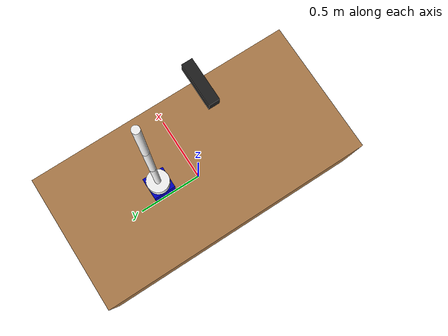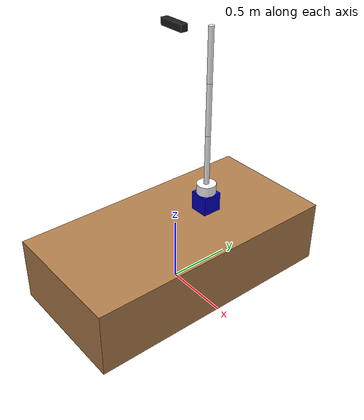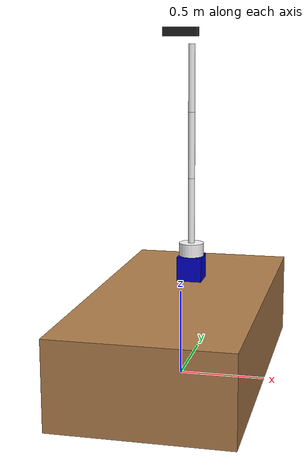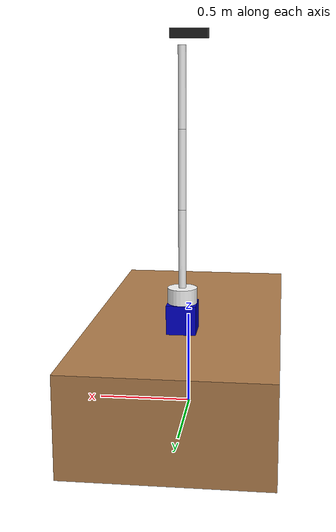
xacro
<?xml version="1.0"?>
<robot name="rosarm" xmlns:xacro="http://ros.org/wiki/xacro" >

 <material name="blue">
 	<color rgba="0 0 0.8 1"/>
 </material>

 <material name="white">
	 <color rgba="1 1 1 1"/>
 </material>

	<link name="world"/>
 <xacro:include filename="$(find rosarm_pkg)/urdf/kinect.urdf.xacro" />
 <xacro:include filename="$(find rosarm_pkg)/urdf/table.urdf.xacro" />

 <xacro:property name="m" value="2" />
 <xacro:property name="l1" value="0.15" />
 <xacro:property name="b1" value="0.15" />
 <xacro:property name="h1" value="0.15" />

	<link name="base_link">
		<visual>
			<origin rpy="0 0 0" xyz="0 0 0"/>
			<geometry>
					<box size="${l1} ${b1} ${h1}"/>
			</geometry>
			<material name="blue"/>
		</visual>

		<collision name="collision_base">
			<geometry>
					<box size="${l1} ${b1} ${h1}"/>
			</geometry>
		</collision>

		<inertial>
			<mass value="${m}"/>
			<origin rpy="0 0 0" xyz="0 0 0"/>
			<inertia ixx="${m*h1*b1/12.0}" ixy="0" ixz="0" iyy="${m*l1*h1/12.0}" iyz="0" izz="${m*l1*b1/12.0}"/>
		</inertial>
	</link>

	<joint name="world_to_base" type="fixed">
		<parent link="world"/>
		<child link="base_link"/>
		<origin xyz="0 0.3 ${ht+h1/2}" rpy="0 0 0"/>
	</joint>

 <xacro:property name="l2" value="0.08" />
 <xacro:property name="r2" value="0.075" />
 <xacro:property name="m2" value="0.5" />

	<link name="base_z">
		<visual>
			<origin rpy="0 0 0" xyz="0 0 0"/>
			<geometry>
					<cylinder radius="${r2}" length="${l2}" />
			</geometry>
			<material name="white"/>
		</visual>

		<collision name="collision_right_wheel">
			<origin rpy="0 0 0" xyz="0 0 0"/>
			<geometry>
				<cylinder length="${l2}" radius="${r2}"/>
			</geometry>
		</collision>

		<inertial>
			<mass value="${m2}"/>
			<origin rpy="0 0 0" xyz="0 0 0"/>
			<inertia ixx="${m2*((3*r2*r2)+(l2*l2))/12.0}" ixy="0" ixz="0" iyy="${m2*((3*r2*r2)+(l2*l2))/12.0}" iyz="0" izz="${(m2*r2*r2)/2.0}"/>
		</inertial>
	</link>

	<joint name="joint_1" type="revolute">
		<origin rpy="0 0 0" xyz="0 0 ${l1/2+l2/2}"/>
		<child link="base_z"/>
		<parent link="base_link"/>
		<axis xyz="0 0 1"/>
		<limit upper="3.14" lower="-3.14" effort="10000" velocity="1000"/>
		<joint_properties damping="1.0" friction="1.0"/>
	</joint>

 <xacro:property name="l3" value="0.4" />
 <xacro:property name="r3" value="0.02" />
 <xacro:property name="m3" value="0.1" />

	<link name="link_1">
		<visual>
			<origin rpy="0 0 0" xyz="0 0 ${l3/2}"/>
			<geometry>
					<cylinder radius="${r3}" length="${l3}" />
			</geometry>
			<material name="white"/>
		</visual>

		<collision name="collision_link_1">
			<origin rpy="0 0 0" xyz="0 0 ${l3/2}"/>
			<geometry>
				<cylinder length="${l3}" radius="${r3}"/>
			</geometry>
		</collision>

		<inertial>
			<mass value="${m3}"/>
			<origin rpy="0 0 0" xyz="0 0 ${l3/2}"/>
			<inertia ixx="${m3*((3*r3*r3)+(l3*l3))/12.0}" ixy="0" ixz="0" iyy="${m3*((3*r3*r3)+(l3*l3))/12.0}" iyz="0" izz="${(m3*r3*r3)/2.0}"/>
		</inertial>
	</link>

	<joint name="shoulder" type="revolute">
		<origin rpy="0 0 0" xyz="0 0 ${l2/2}"/>
		<child link="link_1"/>
		<parent link="base_z"/>
		<axis xyz="1 0 0"/>
		<limit upper="3.14" lower="-3.14" effort="10000" velocity="1000"/>
		<joint_properties damping="1.0" friction="1.0"/>
	</joint>

	<link name="link_2">
		<visual>
			<origin rpy="0 0 0" xyz="0 0 ${l3/2}"/>
			<geometry>
					<cylinder radius="${r3}" length="${l3}" />
			</geometry>
			<material name="white"/>
		</visual>

		<collision name="collision_link_1">
			<origin rpy="0 0 0" xyz="0 0 ${l3/2}"/>
			<geometry>
				<cylinder length="${l3}" radius="${r3}"/>
			</geometry>
		</collision>

		<inertial>
			<mass value="${m3}"/>
			<origin rpy="0 0 0" xyz="0 0 ${l3/2}"/>
			<inertia ixx="${m3*((3*r3*r3)+(l3*l3))/12.0}" ixy="0" ixz="0" iyy="${m3*((3*r3*r3)+(l3*l3))/12.0}" iyz="0" izz="${(m3*r3*r3)/2.0}"/>
		</inertial>
	</link>

	<joint name="elbow" type="revolute">
		<origin rpy="0 0 0" xyz="0 0 ${l3}"/>
		<child link="link_2"/>
		<parent link="link_1"/>
		<axis xyz="0 1 0"/>
		<limit upper="3.14" lower="-3.14" effort="10000" velocity="1000"/>
		<joint_properties damping="1.0" friction="1.0"/>
	</joint>

	<link name="link_3">
		<visual>
			<origin rpy="0 0 0" xyz="0 0 ${l3/2}"/>
			<geometry>
					<cylinder radius="${r3}" length="${l3}" />
			</geometry>
			<material name="white"/>
		</visual>

		<collision name="collision_link_1">
			<origin rpy="0 0 0" xyz="0 0 ${l3/2}"/>
			<geometry>
				<cylinder length="${l3}" radius="${r3}"/>
			</geometry>
		</collision>

		<inertial>
			<mass value="${m3}"/>
			<origin rpy="0 0 0" xyz="0 0 ${l3/2}"/>
			<inertia ixx="${m3*((3*r3*r3)+(l3*l3))/12.0}" ixy="0" ixz="0" iyy="${m3*((3*r3*r3)+(l3*l3))/12.0}" iyz="0" izz="${(m3*r3*r3)/2.0}"/>
		</inertial>
	</link>

	<joint name="wrist" type="revolute">
		<origin rpy="0 0 0" xyz="0 0 ${l3}"/>
		<child link="link_3"/>
		<parent link="link_2"/>
		<axis xyz="1 0 0"/>
		<limit upper="3.14" lower="-3.14" effort="10000" velocity="1000"/>
		<joint_properties damping="1.0" friction="1.0"/>
	</joint>

 <xacro:include filename="$(find rosarm_pkg)/urdf/rosarm_transmission.urdf" />
 <xacro:include filename="$(find rosarm_pkg)/urdf/rosarm_plugin.urdf" />

</robot>

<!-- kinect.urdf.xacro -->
<robot name="kinect" xmlns:xacro="http://ros.org/wiki/xacro">

 <xacro:property name="mk" value="0.1" />
 <xacro:property name="lk" value="0.05" />
 <xacro:property name="bk" value="0.05" />
 <xacro:property name="hk" value="0.2" />

	<link name="kinect">
		<visual>
			<origin rpy="0 0 0" xyz="0 0 0"/>
			<geometry>
					<box size="${lk} ${bk} ${hk}"/>
			</geometry>
		</visual>

		<collision name="collision_kinect">
			<geometry>
					<box size="${lk} ${bk} ${hk}"/>
			</geometry>
		</collision>

		<inertial>
			<mass value="${mk}"/>
			<origin rpy="0 0 0" xyz="0 0 0"/>
			<inertia ixx="${mk*hk*bk/12.0}" ixy="0" ixz="0" iyy="${mk*lk*hk/12.0}" iyz="0" izz="${mk*lk*bk/12.0}"/>
		</inertial>
	</link>

	<gazebo reference="kinect">
  		<material>Gazebo/Black</material>
	</gazebo>

	<joint name="world_to_kinect" type="fixed">
		<parent link="world"/>
		<child link="kinect"/>
		<origin xyz="0 -0.01 2" rpy="0 1.5707 0"/>
	</joint>

	<link name="kinect_link" />

	<joint name="kinect_joint" type="fixed">
		<parent link="kinect"/>
		<child link="kinect_link"/>
		<origin xyz="0 0 0" rpy="0 0 0"/>
	</joint>

	  <!-- camera -->
	  <gazebo reference="kinect">
	    <sensor type="depth" name="camera1">
		<always_on>1</always_on>
		<visualize>true</visualize>
		<camera>
		    <horizontal_fov>1.047</horizontal_fov>
		    <image>
		        <width>640</width>
		        <height>480</height>
		        <format>R8G8B8</format>
		    </image>
		    <depth_camera>

		    </depth_camera>
		    <clip>
		        <near>0.1</near>
		        <far>100</far>
		    </clip>
		</camera>
		     <plugin name="camera_controller" filename="libgazebo_ros_openni_kinect.so">
		     <alwaysOn>true</alwaysOn>
		        <updateRate>10.0</updateRate>
		        <cameraName>kinect</cameraName>
		        <frameName>kinect_link</frameName>
		    <imageTopicName>rgb/image_raw</imageTopicName>
		    <depthImageTopicName>depth/image_raw</depthImageTopicName>
		    <pointCloudTopicName>depth/points</pointCloudTopicName>
		    <cameraInfoTopicName>rgb/camera_info</cameraInfoTopicName>
		    <depthImageCameraInfoTopicName>depth/camera_info</depthImageCameraInfoTopicName>
		    <pointCloudCutoff>0.4</pointCloudCutoff>
		        <hackBaseline>0.07</hackBaseline>
		        <distortionK1>0.0</distortionK1>
		        <distortionK2>0.0</distortionK2>
		        <distortionK3>0.0</distortionK3>
		        <distortionT1>0.0</distortionT1>
		        <distortionT2>0.0</distortionT2>
		    <CxPrime>0.0</CxPrime>
		    <Cx>0.0</Cx>
		    <Cy>0.0</Cy>
		    <focalLength>0.0</focalLength>
		    </plugin>
	    </sensor>
	  </gazebo>
</robot>

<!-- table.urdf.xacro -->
<robot name="table" xmlns:xacro="http://ros.org/wiki/xacro">

 <xacro:property name="mt" value="2" />
 <xacro:property name="lt" value="1" />
 <xacro:property name="bt" value="2" />
 <xacro:property name="ht" value="0.5" />

	<link name="table">
		<visual>
			<origin rpy="0 0 0" xyz="0 0 0"/>
			<geometry>
					<box size="${lt} ${bt} ${ht}"/>
			</geometry>

		</visual>

		<collision name="collision_table">
			<geometry>
					<box size="${lt} ${bt} ${ht}"/>
			</geometry>
		</collision>

		<inertial>
			<mass value="${mt}"/>
			<origin rpy="0 0 0" xyz="0 0 0"/>
			<inertia ixx="${mt*ht*bt/12.0}" ixy="0" ixz="0" iyy="${mt*lt*ht/12.0}" iyz="0" izz="${mt*lt*bt/12.0}"/>
		</inertial>
	</link>

	<gazebo reference="table">
		<material>Gazebo/Wood</material>
	</gazebo>

	<joint name="world_to_table" type="fixed">
		<parent link="world"/>
		<child link="table"/>
		<origin xyz="0 0 ${ht/2}" rpy="0 0 0"/>
	</joint>

 </robot>
